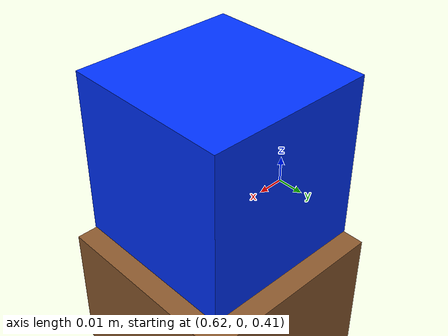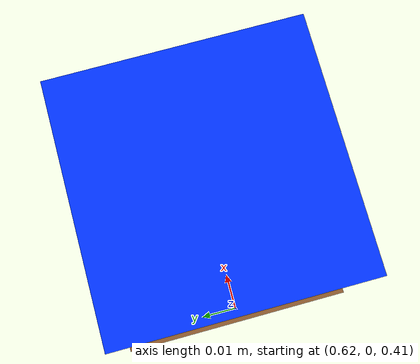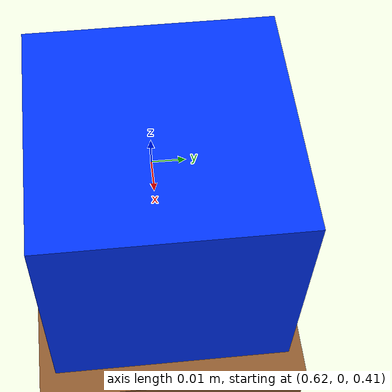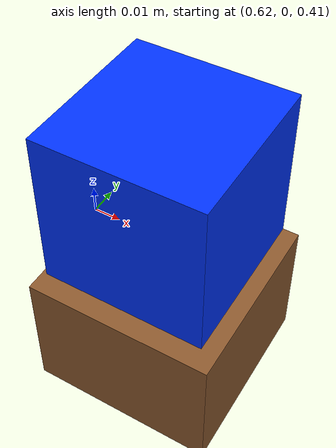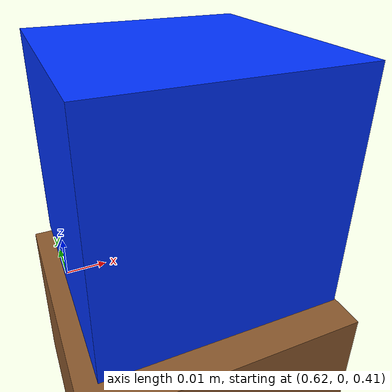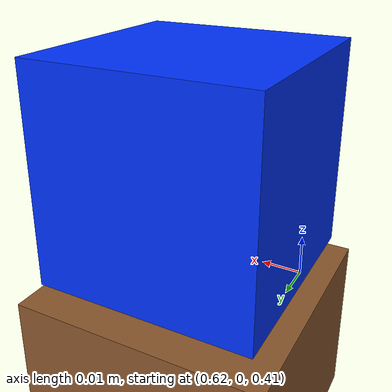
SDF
<?xml version="1.0" ?>
<sdf version="1.9">
  <world name="empty">
    <physics name="1ms" type="ignored">
      <max_step_size>0.001</max_step_size>
      <real_time_factor>1.0</real_time_factor>
    </physics>

    <plugin filename="gz-sim-physics-system" name="gz::sim::systems::Physics"/>
    <plugin filename="gz-sim-user-commands-system" name="gz::sim::systems::UserCommands"/>
    <plugin filename="gz-sim-scene-broadcaster-system" name="gz::sim::systems::SceneBroadcaster"/>

    <light type="directional" name="sun">
      <cast_shadows>true</cast_shadows>
      <pose>0 0 10 0 0 0</pose>
      <diffuse>0.8 0.8 0.8 1</diffuse>
      <specular>0.2 0.2 0.2 1</specular>
      <direction>-0.5 0.1 -0.9</direction>
    </light>

    <model name="table">
      <static>true</static>
      <pose>0.95 0 0.375 0 0 0</pose>
      <link name="table_link">
        <collision name="table_collision">
          <geometry>
            <box>
              <size>0.8 0.8 0.05</size>
            </box>
          </geometry>
        </collision>
        <visual name="table_visual">
          <geometry>
            <box>
              <size>0.8 0.8 0.05</size>
            </box>
          </geometry>
          <material>
            <diffuse>0.55 0.35 0.18 1</diffuse>
          </material>
        </visual>
      </link>
    </model>

    <model name="object_box">
      <static>false</static>
      <pose>0.65 0 0.435 0 0 0</pose>
      <link name="box_link">
        <inertial>
          <mass>0.05</mass>
          <inertia>
            <ixx>0.00002</ixx>
            <iyy>0.00002</iyy>
            <izz>0.00002</izz>
          </inertia>
        </inertial>
        <collision name="box_collision">
          <geometry>
            <box>
              <size>0.06 0.06 0.06</size>
            </box>
          </geometry>
        </collision>
        <visual name="box_visual">
          <geometry>
            <box>
              <size>0.06 0.06 0.06</size>
            </box>
          </geometry>
          <material>
            <diffuse>0 0.2 1 1</diffuse>
          </material>
        </visual>
      </link>
    </model>
  </world>
</sdf>
